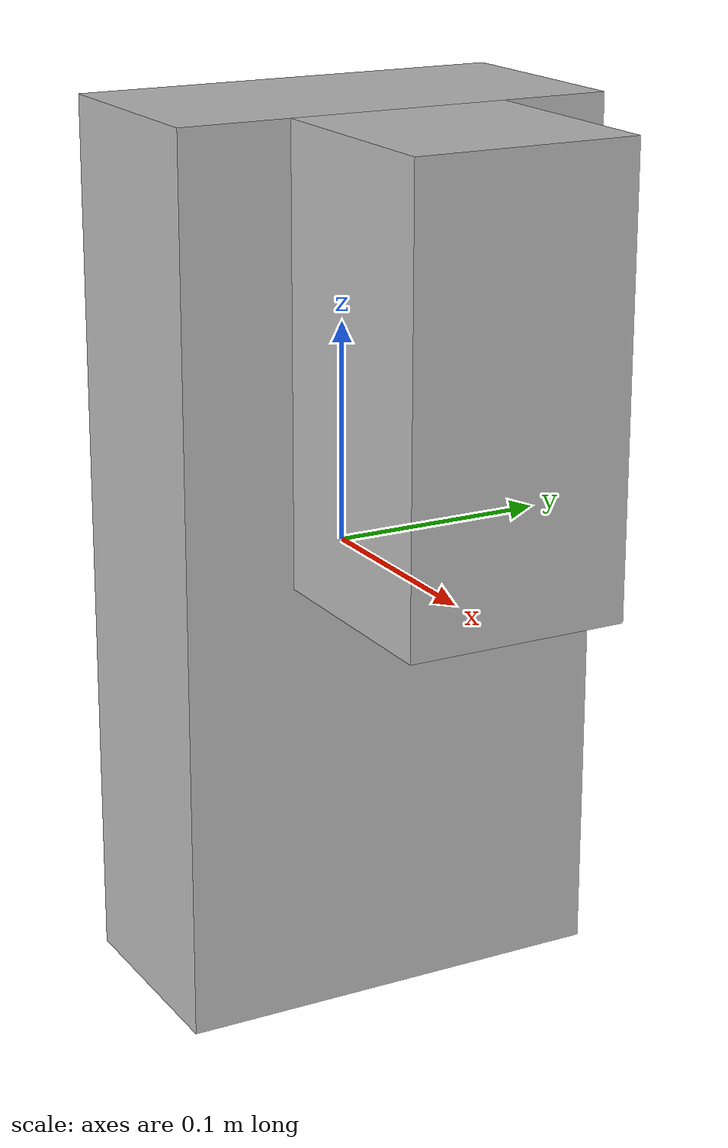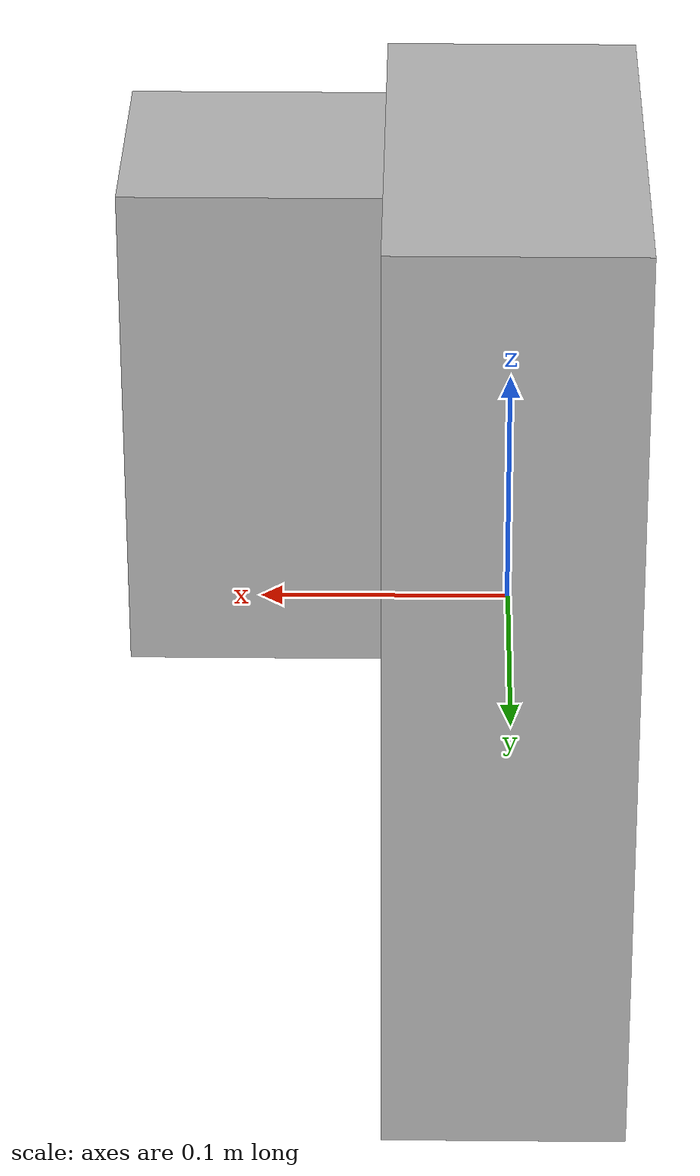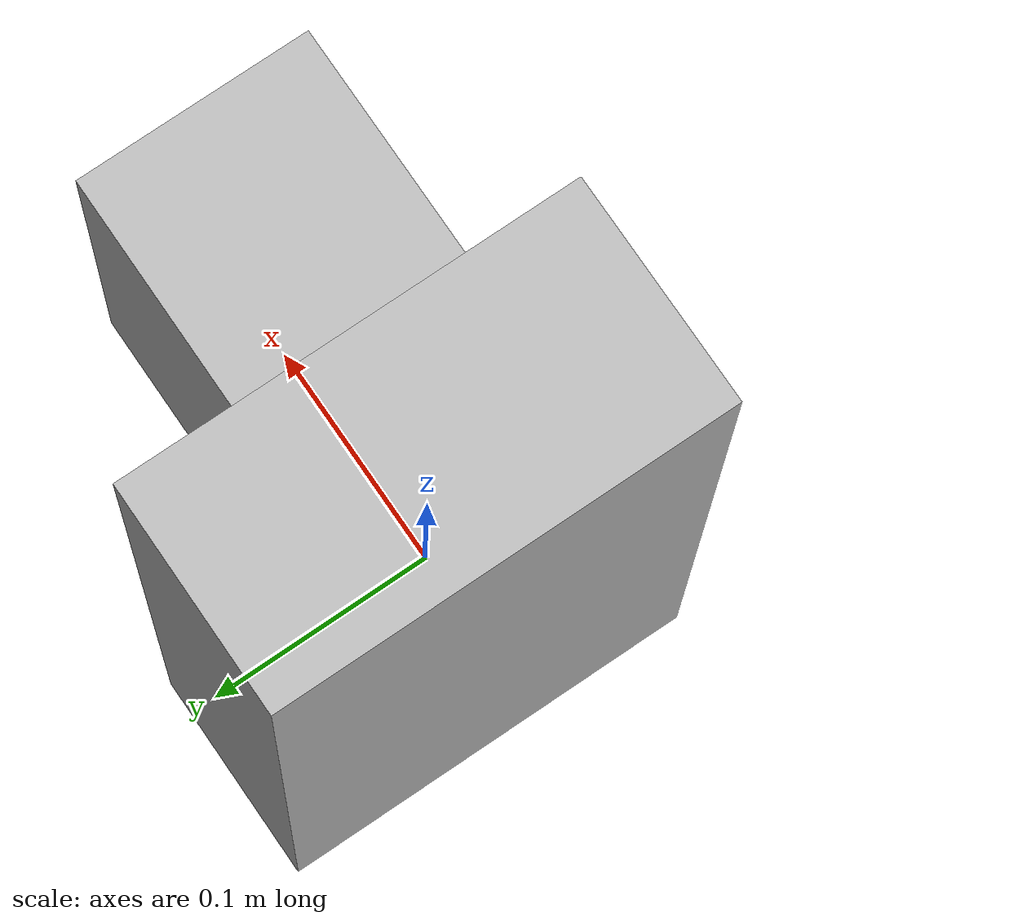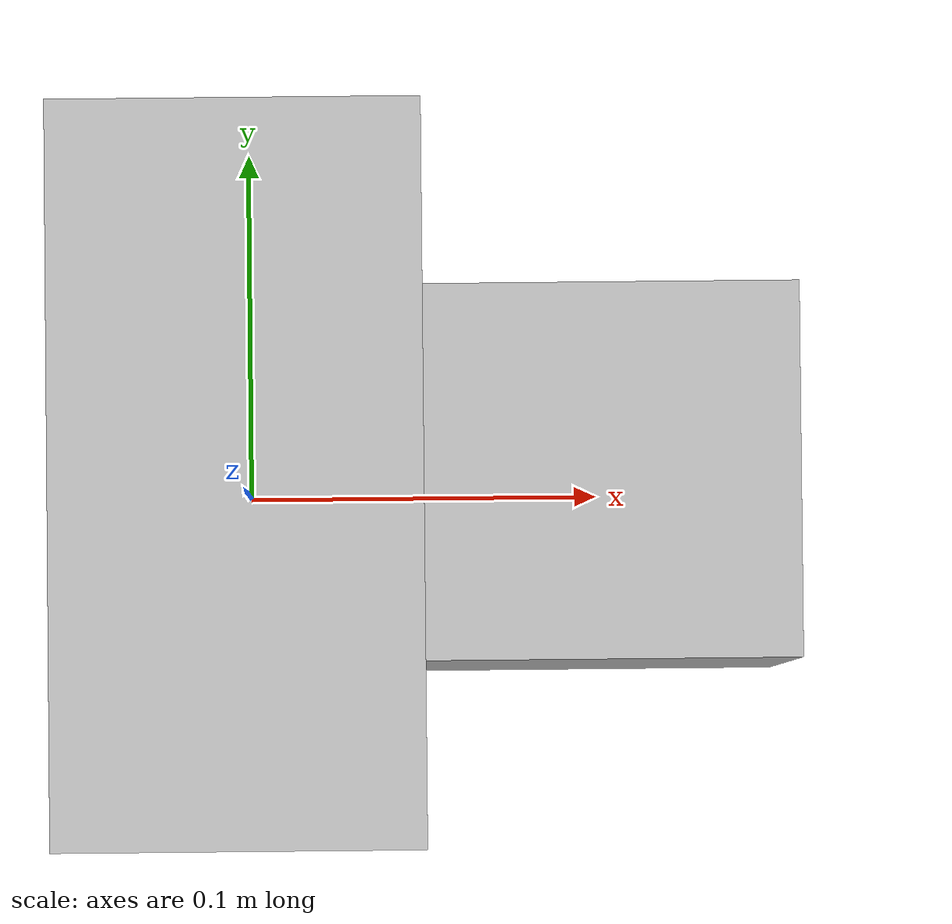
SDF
<?xml version='1.0' encoding='utf-8'?>
<sdf version="1.7">
  <model name="joint_universal">
    <link name="link_1">
      <visual name="link_1_visual">
        <geometry>
          <box>
            <size>0.1 0.2 0.4</size>
          </box>
        </geometry>
      </visual>
      <collision name="link_1_collision">
        <geometry>
          <box>
            <size>0.1 0.2 0.4</size>
          </box>
        </geometry>
      </collision>
      <inertial>
        <mass>12.3</mass>
        <inertia>
          <ixx>0.205</ixx>
          <ixy>0</ixy>
          <ixz>0</ixz>
          <iyy>0.17425</iyy>
          <iyz>0</iyz>
          <izz>0.05125</izz>
        </inertia>
      </inertial>
    </link>
    <link name="link_2">
      <pose>0.1 0 0.1 0 0 0</pose>
      <visual name="link_2_visual">
        <geometry>
          <box>
            <size>0.1 0.1 0.2</size>
          </box>
        </geometry>
      </visual>
      <collision name="link_2_collision">
        <geometry>
          <box>
            <size>0.1 0.1 0.2</size>
          </box>
        </geometry>
      </collision>
      <inertial>
        <mass>1.23</mass>
        <inertia>
          <ixx>0.005125</ixx>
          <ixy>0</ixy>
          <ixz>0</ixz>
          <iyy>0.005125</iyy>
          <iyz>0</iyz>
          <izz>0.00205</izz>
        </inertia>
      </inertial>
    </link>

    <joint name="joint_universal" type="universal">
      <parent>link_1</parent>
      <child>link_2</child>
      <pose>0 0 0.1 0 0 0</pose>
      <axis>
        <xyz>1 0 0</xyz>
      </axis>
      <axis2>
        <xyz>0 0 1</xyz>
      </axis2>
    </joint>
  </model>
</sdf>
